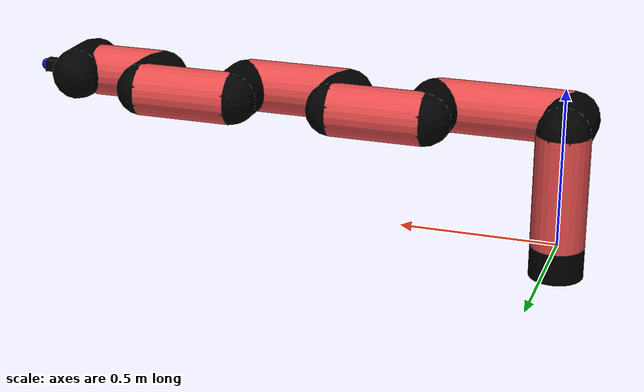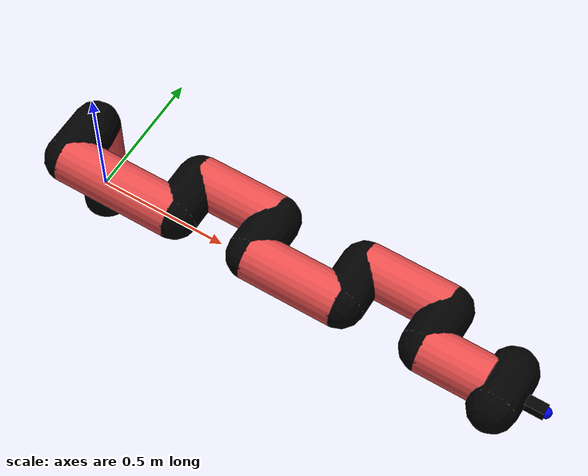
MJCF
<mujoco model="manipulator">
		<compiler angle="degree" coordinate="local" inertiafromgeom="auto" meshdir="meshes/"/>
		<option gravity="0 0 0" integrator="RK4" iterations="30" timestep="0.01"/>

		<default>
		<joint armature="1" limited="true" stiffness="10" damping="15" frictionloss="5.0"/>
		<geom conaffinity="1" condim="3" contype="1" friction=".5 .1 .1" margin="0.002"/>
		<motor ctrllimited="true"/>
		<position ctrllimited="true"/>
		</default>

		<asset>
		<texture builtin="gradient" height="100" rgb1="1.0 1.0 1.0" rgb2="1.0 1.0 1.0" type="skybox" width="100"/>
		<texture builtin="flat" height="32" name="arm_tex" rgb1="0.9 0.3 0.3" type="2d" width="32"/>
		<texture builtin="flat" height="32" name="gripper_tex" rgb1="0.0 0.0 0.0" type="cube" width="32"/>

		<material name="arm_mat" shininess="0.1" specular="0.1" texture="arm_tex"/>
		<material name="gripper_mat" shininess="1" specular="1" texture="gripper_tex"/>
		</asset>

		<worldbody>
		<light cutoff="45" diffuse=".8 .8 .8" dir="0 0.16 -1" directional="false" name="light" pos="0 -2.0 8.0" specular="0.3 0.3 0.3"/>

		<body name="base_link" pos="0 0 -0.1">
		<geom fromto="0 0 0 0 0 0.1" material="arm_mat" name="base_link" rgba="0.0 0.0 0.0 1" size="0.085" type="cylinder"/>
		</body>

		<body name="l1" pos="0 0 0">
<geom fromto="0 0 0 0 0 0.36" material="arm_mat" name="l1" rgba="0.9 0.3 0.3 1" size="0.085" type="cylinder"/>
<geom fromto="0 0 0.36 0 -0.16 0.36" material="arm_mat" name="l1_ex" rgba="0.0 0.0 0.0 1" size="0.085" type="capsule"/>
<joint axis="0 0 1" name="j1" pos="0 0 0" range="-90 90" damping="34.27" frictionloss="10.14"/>

<body name="l2" pos="0 -0.16 0.36">
<geom fromto="0 0 0 0.43 0 0" material="arm_mat" name="l2" rgba="0.9 0.3 0.3 1" size="0.085" type="cylinder"/>
<geom fromto="0.43 0 0 0.43 0.16 0" material="arm_mat" name="l2_ex" rgba="0.0 0.0 0.0 1" size="0.085" type="capsule"/>
<joint axis="0.0 1.0 0.0" name="j2" pos="0 0 0" range="-90 60" damping="27.77" frictionloss="9.83"/>

<body name="l3" pos="0.43 0.16 0">
<geom fromto="0 0 0 0.3 0 0" material="arm_mat" name="l3" rgba="0.9 0.3 0.3 1" size="0.085" type="cylinder"/>
<geom fromto="0.3 0 0 0.3 -0.16 0" material="arm_mat" name="l3_ex" rgba="0.0 0.0 0.0 1" size="0.085" type="capsule"/>
<joint axis="0.0 1.0 0.0" name="j3" pos="0 0 0" range="-30 60" damping="22.67" frictionloss="11.53"/>

<body name="l4" pos="0.3 -0.16 0">
<geom fromto="0 0 0 0.34 0 0" material="arm_mat" name="l4" rgba="0.9 0.3 0.3 1" size="0.085" type="cylinder"/>
<geom fromto="0.34 0 0 0.34 0.16 0" material="arm_mat" name="l4_ex" rgba="0.0 0.0 0.0 1" size="0.085" type="capsule"/>
<joint axis="0.0 1.0 0.0" name="j4" pos="0 0 0" range="-30 60" damping="23.98" frictionloss="8.86"/>

<body name="l5" pos="0.34 0.16 0">
<geom fromto="0 0 0 0.31 0 0" material="arm_mat" name="l5" rgba="0.9 0.3 0.3 1" size="0.085" type="cylinder"/>
<geom fromto="0.31 0 0 0.31 -0.16 0" material="arm_mat" name="l5_ex" rgba="0.0 0.0 0.0 1" size="0.085" type="capsule"/>
<joint axis="0.0 1.0 0.0" name="j5" pos="0 0 0" range="-30 60" damping="36.94" frictionloss="9.29"/>

<body name="l6" pos="0.31 -0.16 0">
<geom fromto="0 0 0 0.23 0 0" material="arm_mat" name="l6" rgba="0.9 0.3 0.3 1" size="0.085" type="cylinder"/>
<joint axis="0.0 1.0 0.0" name="j6" pos="0 0 0" range="-30 60" damping="32.56" frictionloss="9.44"/>

<body name="gripper" pos="0.23 0 0">
<geom fromto="0.05 -0.07 0 0.05 0.07 0" material="gripper_mat" name="gripper" rgba="0.0 0.0 0.0 1" size="0.085" type="capsule"/><joint axis="1 0 0" name="j7" pos="0 0 0" range="-90 90" damping="15" frictionloss="5.0"/><body name="finger" pos="0.1 0 0">
<geom fromto="0 0.0 0 0.1 0.0 0" material="gripper_mat" name="finger" rgba="0.0 0.0 0.0 1" size="0.020 0.06 0.06" type="box"/>
</body>
<site name="current" pos="0.2 0. 0.0" rgba="0. 0. 1.0 1" size="0.02" type="sphere"/>
</body>
</body>
</body>
</body>
</body>
</body>
</body>
</worldbody>
<actuator>
<motor ctrllimited="true" ctrlrange="-1.0 1.0" joint="j1" gear="76.95"/>
<motor ctrllimited="true" ctrlrange="-1.0 1.0" joint="j2" gear="73.26"/>
<motor ctrllimited="true" ctrlrange="-1.0 1.0" joint="j3" gear="90.36"/>
<motor ctrllimited="true" ctrlrange="-1.0 1.0" joint="j4" gear="68.96"/>
<motor ctrllimited="true" ctrlrange="-1.0 1.0" joint="j5" gear="93.39"/>
<motor ctrllimited="true" ctrlrange="-1.0 1.0" joint="j6" gear="74.13"/>
<motor ctrllimited="true" ctrlrange="-1.0 1.0" joint="j7" gear="80"/>
</actuator>
</mujoco>
